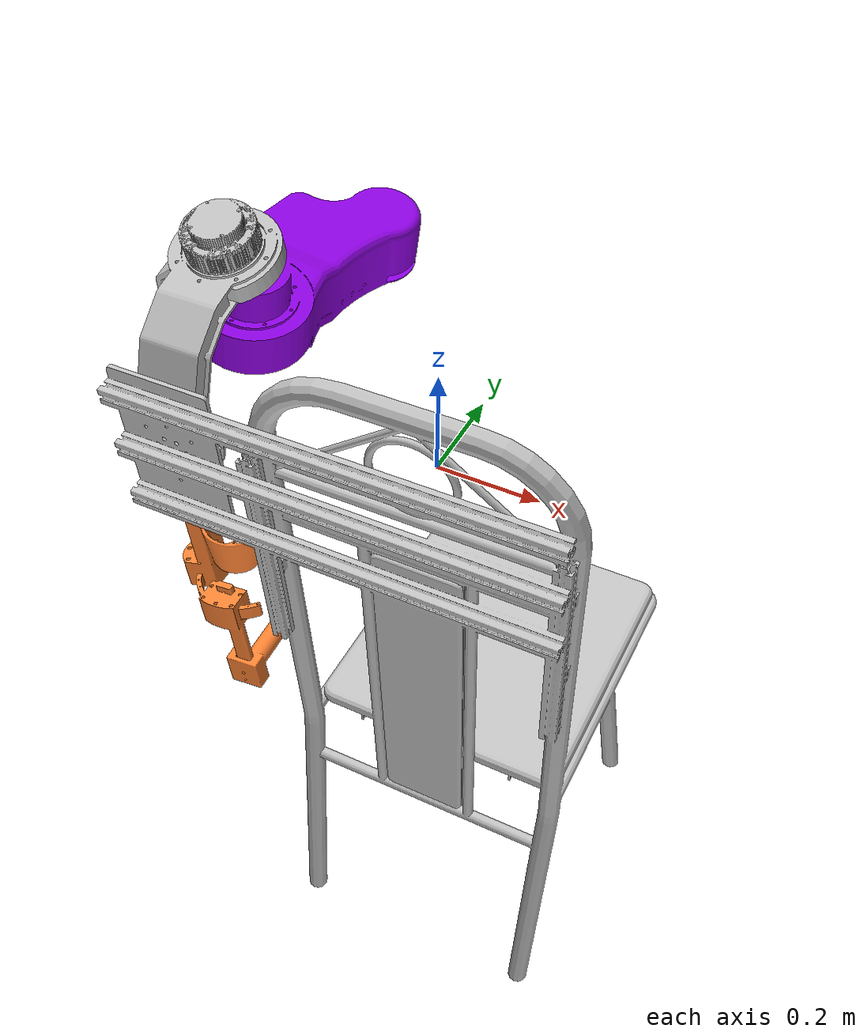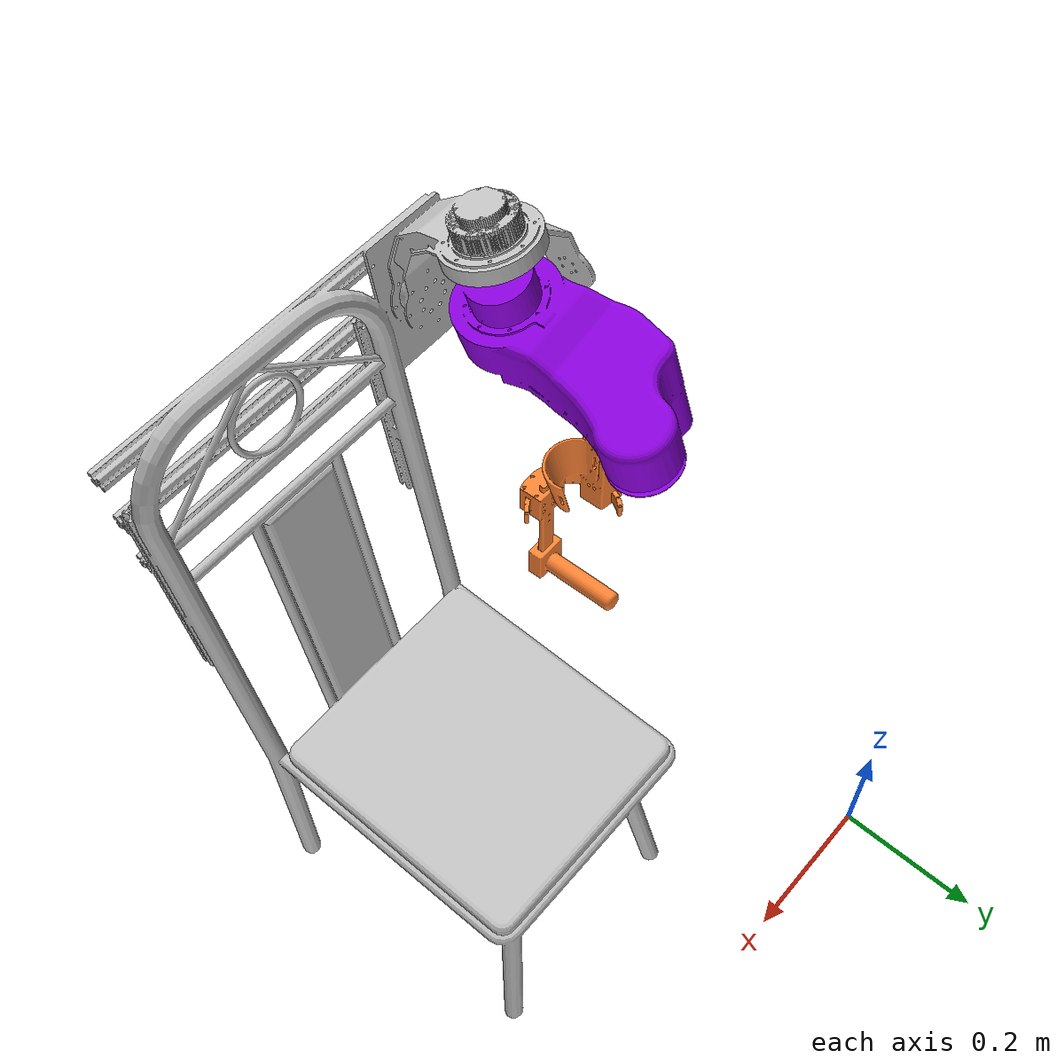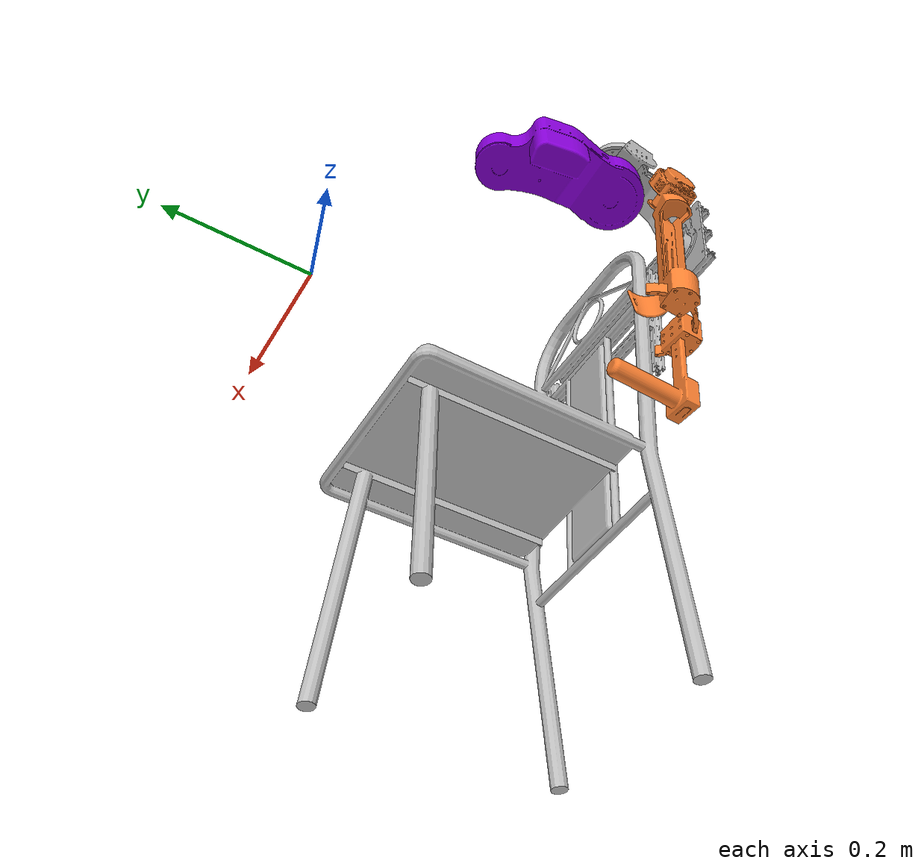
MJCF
<mujoco model="gim_arm">
  <compiler angle="radian"/>

  <asset>
    <mesh name="base_link" content_type="model/stl" file="meshes/base_link.STL"/>
    <mesh name="shoulder_link" content_type="model/stl" file="meshes/shoulder_link.STL"/>
    <mesh name="upper_arm_link" content_type="model/stl" file="meshes/upper_arm_link.STL"/>
    <mesh name="lower_arm_link" content_type="model/stl" file="meshes/lower_arm_link.STL"/>
  </asset>

  <worldbody>
    <geom pos="0 0 0" quat="0.999139 0.0414881 0 0" type="mesh" rgba="0.752941 0.752941 0.752941 1" mesh="base_link"/>
    <body name="shoulder_link" pos="0.031381 -0.538297 0.605919" quat="0.707244 0.0979564 0.692157 0.105496">
      <inertial pos="-0.166449 0.0056888 -0.0172849" quat="0.953505 0.00316386 -0.300899 -0.0166541" mass="0.190733" diaginertia="0.000256936 0.000237054 0.000102196"/>
      <joint name="base_joint" pos="0 0 0" axis="0.999316 -0.0310989 -0.0199989" range="0 1.57" actuatorfrcrange="-5 5"/>
      <geom type="mesh" rgba="0.752941 0.752941 0.752941 1" mesh="shoulder_link"/>
      <body name="upper_arm_link" pos="-0.049966 0.001555 0.00099995" quat="0.589584 -0.488746 -0.405223 0.499311">
        <inertial pos="-0.0207367 0.102616 -0.0918424" quat="0.663565 -0.00524028 0.0607563 0.745629" mass="1.15563" diaginertia="0.00533537 0.00465501 0.00100501"/>
        <joint name="shoulder_joint" pos="0 0 0" axis="0 -1 0" range="-1.1811 1.2002" actuatorfrcrange="-40 40"/>
        <geom type="mesh" rgba="0.545098 0 0.870588 1" mesh="upper_arm_link"/>
        <body name="lower_arm_link" pos="-0.014232 0 -0.21358" quat="-0.474042 0.474045 -0.524673 -0.524674">
          <inertial pos="0.18527 0.00970989 0.0463326" quat="0.0339146 0.77458 0.0270247 0.630988" mass="0.846777" diaginertia="0.00187451 0.00160639 0.00058703"/>
          <joint name="elbow_joint" pos="0 0 0" axis="0 0 -1" range="-1.6983 1.1929" actuatorfrcrange="-5 5"/>
          <geom type="mesh" rgba="1 0.509804 0.196078 1" mesh="lower_arm_link"/>
        </body>
      </body>
    </body>
  </worldbody>
</mujoco>
